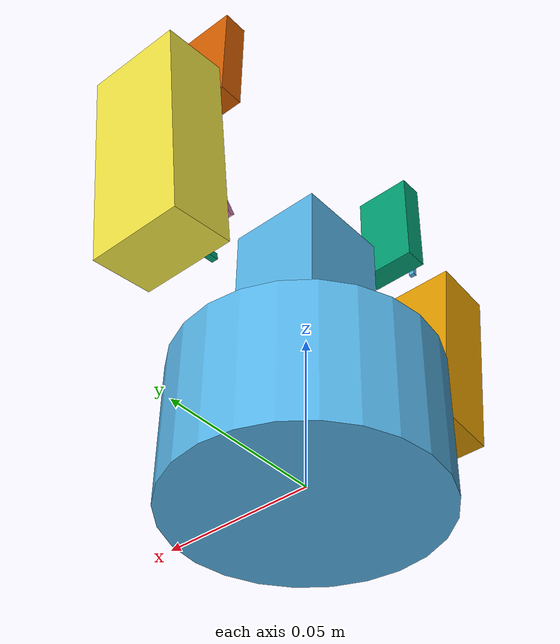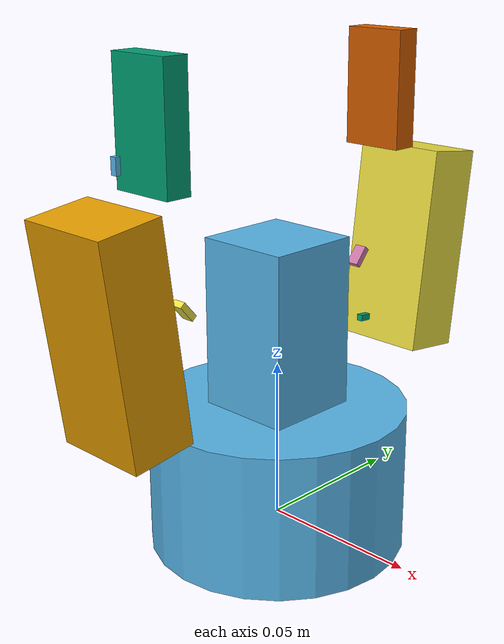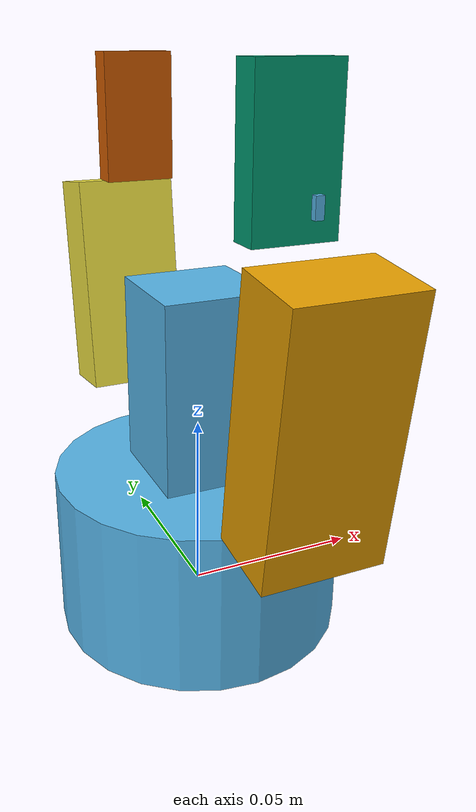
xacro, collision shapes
<?xml version="1.0"?>
    <robot name="robotiq" xmlns:xacro="http://wiki.ros.org/xacro">

        <!-- common stuff -->
        <xacro:include filename="$(find ur3_description)/urdf/common.gazebo.xacro" />

        <xacro:include filename="$(find robotiq_2f_85_gripper_description)/urdf/robotiq_2f_85.urdf.xacro"/>
        <link name="world"/>
        <xacro:robotiq_2f_85 name="gripper" parent="world" precise_collision="false" adaptive_transmission="false">
            <origin xyz="0 0 0" rpy="0 0 0"/>
        </xacro:robotiq_2f_85>
    </robot>

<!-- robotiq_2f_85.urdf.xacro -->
<robot xmlns:xacro="http://ros.org/wiki/xacro">

	<xacro:include filename="$(find robotiq_2f_85_gripper_description)/urdf/inertias.urdf.xacro" />

	<xacro:macro name="robotiq_2f_85" params="parent name precise_collision:=false adaptive_transmission:=false with_pads:=true *origin">

		<!-- base -->
		<joint name="${parent}_${name}_base_joint" type="fixed">
			<xacro:insert_block name="origin"/>
			<parent link="${parent}"/>
			<child link="${name}_base"/>
		</joint>
		<link name="${name}_base">
			<inertial>
				<mass value="0.5"/>
				<origin xyz="0 0 ${0.015*0.5}"  />
				<xacro:cylinder_inertia radius="0.04" length="0.045" mass="0.5"/>
			</inertial>
			<visual>
				<origin xyz="0 0 0" rpy="0 -1.5708 0"/>
				<geometry>
					<mesh filename="package://robotiq_2f_85_gripper_description/meshes/visual/base.dae"/>
				</geometry>
			</visual>
			<xacro:unless value="${precise_collision}">
			<collision>
				<origin xyz="0 0 0.015" rpy="0 0 0"/>
				<geometry>
					<cylinder radius="0.04" length="0.045"/>
				</geometry>
			</collision>
			<collision>
				<origin xyz="0 0 0.06" rpy="0 0 0"/>
				<geometry>
					<box size="0.03 0.03 0.06"/>
				</geometry>
			</collision>
			</xacro:unless>
			<xacro:if value="${precise_collision}">
			<collision>
				<geometry>
					<mesh filename="package://robotiq_2f_85_gripper_description/meshes/collision/base.stl" scale="0.001 0.001 0.001"/>
				</geometry>
			</collision>
			</xacro:if>
		</link>

		<!-- right finger -->

		<joint name="${name}_right_driver_joint" type="revolute">
			<origin xyz="0 0.0306011 0.054904" rpy="0 0 0"/>
			<parent link="${name}_base"/>
			<child link="${name}_right_driver"/>
			<axis xyz="1 0 0"/>
			<limit lower="${0 * 3.141592 / 180}" upper="${50 * 3.141592 / 180}" effort="60" velocity="${110 * 3.141592 / 180}" />
		</joint>
		<link name="${name}_right_driver">
			<inertial>
				<mass value="0.1"/>
				<origin xyz="0 0.02 0" rpy="0 0 0" />
				<xacro:box_inertia x_dim="0.02" y_dim="0.04" z_dim="0.02" mass="0.1"/>
			</inertial>
			<visual>
				<geometry>
					<mesh filename="package://robotiq_2f_85_gripper_description/meshes/visual/driver.dae" scale="0.001 0.001 0.001"/>
				</geometry>
			</visual>
			<xacro:unless value="${precise_collision}">
			<collision>
				<origin xyz="0 0.01 0" rpy="-0.1 0 0"/>
				<geometry>
					<box size="0.002 0.004 0.002"/>
				</geometry>
			</collision>
			</xacro:unless>
			<xacro:if value="${precise_collision}">
			<collision>
				<geometry>
					<mesh filename="package://robotiq_2f_85_gripper_description/meshes/collision/driver.stl" scale="0.001 0.001 0.001"/>
				</geometry>
			</collision>
			</xacro:if>
		</link>

		<xacro:unless value="${adaptive_transmission}">
		<joint name="${name}_right_coupler_joint" type="fixed">
			<origin xyz="0 0.0315 -0.0041" rpy="0 0 0"/>
			<parent link="${name}_right_driver"/>
			<child link="${name}_right_coupler"/>
		</joint>
		</xacro:unless>
		<xacro:if value="${adaptive_transmission}">
			<joint name="${name}_right_coupler_joint" type="revolute">
			<origin xyz="0 0.0315 -0.0041" rpy="0 0 0"/>
			<parent link="${name}_right_driver"/>
			<child link="${name}_right_coupler"/>
			<axis xyz="1 0 0"/>
			<limit lower="${-170 * 3.141592 / 180}" upper="${170 * 3.141592 / 180}" effort="176" velocity="${110 * 3.141592 / 180}" />
		</joint>
		</xacro:if>
		<link name="${name}_right_coupler">
			<inertial>
				<mass value="0.1"/>
				<origin xyz="0 0.0 0.025" rpy="-1.7 0 0"/>
				<xacro:box_inertia x_dim="0.03" y_dim="0.065" z_dim="0.02" mass="0.1"/>
			</inertial>
			<visual>
				<geometry>
					<mesh filename="package://robotiq_2f_85_gripper_description/meshes/visual/coupler.dae" scale="0.001 0.001 0.001"/>
				</geometry>
			</visual>
			<xacro:unless value="${precise_collision}">
			<collision>
				<origin xyz="0 0.0 0.025" rpy="-1.7 0 0"/>
				<geometry>
					<box size="0.03 0.065 0.02"/>
				</geometry>
			</collision>
			</xacro:unless>
			<xacro:if value="${precise_collision}">
				<collision>
					<geometry>
						<mesh filename="package://robotiq_2f_85_gripper_description/meshes/collision/coupler.stl" scale="0.001 0.001 0.001"/>
					</geometry>
				</collision>
			</xacro:if>
		</link>

		<joint name="${name}_right_follower_joint" type="revolute">
			<origin xyz="0 0.0061 0.0471" rpy="0 0 0"/>
			<parent link="${name}_right_coupler"/>
			<child link="${name}_right_follower"/>
			<axis xyz="1 0 0"/>
			<limit lower="${-170 * 3.141592 / 180}" upper="${170 * 3.141592 / 180}" effort="176" velocity="${110 * 3.141592 / 180}" />

			<xacro:unless value="${adaptive_transmission}">
			<mimic joint="${name}_right_driver_joint" multiplier="-1"/>
			</xacro:unless>
		</joint>
		<link name="${name}_right_follower">
			<inertial>
				<mass value="0.1"/>
				<origin xyz="0 -0.018 0.022" />
				<xacro:box_inertia x_dim="0.02" y_dim="0.015" z_dim="0.048" mass="0.1"/>
			</inertial>
			<visual>
				<geometry>
					<mesh filename="package://robotiq_2f_85_gripper_description/meshes/visual/follower.dae" scale="0.001 0.001 0.001"/>
				</geometry>
			</visual>
			<xacro:unless value="${precise_collision}">
			<collision>
				<origin xyz="0 -0.01 0.022" rpy="0 0 0"/>
				<geometry>
					<box size="0.002 0.0015 0.0048"/>
				</geometry>
			</collision>
			</xacro:unless>
			<xacro:if value="${precise_collision}">
			<collision>
				<geometry>
					<mesh filename="package://robotiq_2f_85_gripper_description/meshes/collision/follower.stl" scale="0.001 0.001 0.001"/>
				</geometry>
			</collision>
			</xacro:if>
		</link>

		<xacro:if value="${with_pads}">
			<joint name="${name}_right_pad_joint" type="fixed">
				<parent link="${name}_right_follower"/>
				<child link="${name}_right_pad"/>
			</joint>
			<link name="${name}_right_pad">
				<inertial>
					<mass value="0.1"/>
					<origin xyz="0 -0.022 0.031" />
					<xacro:box_inertia x_dim="0.02" y_dim="0.008" z_dim="0.036" mass="0.1"/>
				</inertial>
				<visual>
					<geometry>
						<mesh filename="package://robotiq_2f_85_gripper_description/meshes/visual/pad.dae" scale="0.001 0.001 0.001"/>
					</geometry>
				</visual>
				<xacro:unless value="${precise_collision}">
				<collision>
					<origin xyz="0 -0.022 0.031" rpy="0 0 0"/>
					<geometry>
						<box size="0.02 0.008 0.036"/>
					</geometry>
				</collision>
				</xacro:unless>
				<xacro:if value="${precise_collision}">
				<collision>
					<geometry>
						<mesh filename="package://robotiq_2f_85_gripper_description/meshes/collision/pad.stl" scale="0.001 0.001 0.001"/>
					</geometry>
				</collision>
				</xacro:if>
			</link>
		</xacro:if>

		<joint name="${name}_right_spring_link_joint" type="revolute">
			<origin xyz="0 0.012 0.0614" rpy="0 0 0"/>
			<parent link="${name}_base"/>
			<child link="${name}_right_spring_link"/>
			<axis xyz="1 0 0"/>
			<limit lower="${-170 * 3.141592 / 180}" upper="${170 * 3.141592 / 180}" effort="176" velocity="${110 * 3.141592 / 180}" />

			<xacro:unless value="${adaptive_transmission}">
			<mimic joint="${name}_right_driver_joint" multiplier="1"/>
			</xacro:unless>
		</joint>
		<link name="${name}_right_spring_link">
			<inertial>
				<mass value="0.1"/>
				<origin xyz="0 0.018 0.018" rpy="-0.7068 0 0"/>
				<xacro:box_inertia x_dim="0.04" y_dim="0.02" z_dim="0.065" mass="0.1"/>
			</inertial>
			<visual>
				<geometry>
					<mesh filename="package://robotiq_2f_85_gripper_description/meshes/visual/spring_link.dae" scale="0.001 0.001 0.001"/>
				</geometry>
			</visual>
			<xacro:unless value="${precise_collision}">
			<collision>
				<origin xyz="0 0.025 0.015" rpy="-0.7068 0 0"/>
				<geometry>
					<box size="0.004 0.002 0.0065"/>
				</geometry>
			</collision>
			</xacro:unless>
			<xacro:if value="${precise_collision}">
			<collision>
				<geometry>
					<mesh filename="package://robotiq_2f_85_gripper_description/meshes/collision/spring_link.stl" scale="0.001 0.001 0.001"/>
				</geometry>
			</collision>
			</xacro:if>
		</link>

		<!-- left finger -->

		<joint name="${name}_left_driver_joint" type="revolute">
			<origin xyz="0 -0.0306011 0.054904" rpy="0 0 3.141592653589793"/>
			<parent link="${name}_base"/>
			<child link="${name}_left_driver"/>
			<axis xyz="1 0 0"/>
			<limit lower="${0 * 3.141592 / 180}" upper="${50 * 3.141592 / 180}" effort="176" velocity="${110 * 3.141592 / 180}" />

			<xacro:unless value="${adaptive_transmission}">
			<mimic joint="${name}_right_driver_joint" multiplier="1"/>
			</xacro:unless>
		</joint>
		<link name="${name}_left_driver">
			<inertial>
				<mass value="0.1"/>
				<origin xyz="0 0.02 0" rpy="0 0 0" />
				<xacro:box_inertia x_dim="0.02" y_dim="0.04" z_dim="0.02" mass="0.1"/>
			</inertial>
			<visual>
				<geometry>
					<mesh filename="package://robotiq_2f_85_gripper_description/meshes/visual/driver.dae" scale="0.001 0.001 0.001"/>
				</geometry>
			</visual>
			<xacro:unless value="${precise_collision}">
			<collision>
				<origin xyz="0 0.01 0" rpy="-0.1 0 0"/>
				<geometry>
					<box size="0.002 0.004 0.002"/>
				</geometry>
			</collision>
			</xacro:unless>
			<xacro:if value="${precise_collision}">
			<collision>
				<geometry>
					<mesh filename="package://robotiq_2f_85_gripper_description/meshes/collision/driver.stl" scale="0.001 0.001 0.001"/>
				</geometry>
			</collision>
			</xacro:if>
		</link>

		<xacro:unless value="${adaptive_transmission}">
		<joint name="${name}_left_coupler_joint" type="fixed">
			<origin xyz="0 0.0315 -0.0041" rpy="0 0 0"/>
			<parent link="${name}_left_driver"/>
			<child link="${name}_left_coupler"/>
		</joint>
		</xacro:unless>
		<xacro:if value="${adaptive_transmission}">
			<joint name="${name}_left_coupler_joint" type="revolute">
			<origin xyz="0 0.0315 -0.0041" rpy="0 0 0"/>
			<parent link="${name}_left_driver"/>
			<child link="${name}_left_coupler"/>
			<axis xyz="1 0 0"/>
			<limit lower="${-170 * 3.141592 / 180}" upper="${170 * 3.141592 / 180}" effort="176" velocity="${110 * 3.141592 / 180}" />
		</joint>
		</xacro:if>
		<link name="${name}_left_coupler">
			<inertial>
				<mass value="0.1"/>
				<origin xyz="0 0.0 0.025" rpy="-1.7 0 0"/>
				<xacro:box_inertia x_dim="0.03" y_dim="0.065" z_dim="0.02" mass="0.1"/>
			</inertial>
			<visual>
				<geometry>
					<mesh filename="package://robotiq_2f_85_gripper_description/meshes/visual/coupler.dae" scale="0.001 0.001 0.001"/>
				</geometry>
			</visual>
			<xacro:unless value="${precise_collision}">
			<collision>
				<origin xyz="0 0.0 0.025" rpy="-1.7 0 0"/>
				<geometry>
					<box size="0.03 0.065 0.02"/>
				</geometry>
			</collision>
			</xacro:unless>
			<xacro:if value="${precise_collision}">
				<collision>
					<geometry>
						<mesh filename="package://robotiq_2f_85_gripper_description/meshes/collision/coupler.stl" scale="0.001 0.001 0.001"/>
					</geometry>
				</collision>
			</xacro:if>
		</link>

		<joint name="${name}_left_follower_joint" type="revolute">
			<origin xyz="0 0.0061 0.0471" rpy="0 0 0"/>
			<parent link="${name}_left_coupler"/>
			<child link="${name}_left_follower"/>
			<axis xyz="1 0 0"/>
			<limit lower="${-170 * 3.141592 / 180}" upper="${170 * 3.141592 / 180}" effort="176" velocity="${110 * 3.141592 / 180}" />

			<xacro:unless value="${adaptive_transmission}">
			<mimic joint="${name}_right_driver_joint" multiplier="-1"/>
			</xacro:unless>
		</joint>
		<link name="${name}_left_follower">
			<inertial>
				<mass value="0.1"/>
				<origin xyz="0 -0.018 0.022" />
				<xacro:box_inertia x_dim="0.02" y_dim="0.015" z_dim="0.048" mass="0.1"/>
			</inertial>
			<visual>
				<geometry>
					<mesh filename="package://robotiq_2f_85_gripper_description/meshes/visual/follower.dae" scale="0.001 0.001 0.001"/>
				</geometry>
			</visual>
			<xacro:unless value="${precise_collision}">
			<collision>
				<origin xyz="0 -0.01 0.022" rpy="0 0 0"/>
				<geometry>
					<box size="0.002 0.0015 0.0048"/>
				</geometry>
			</collision>
			</xacro:unless>
			<xacro:if value="${precise_collision}">
			<collision>
				<geometry>
					<mesh filename="package://robotiq_2f_85_gripper_description/meshes/collision/follower.stl" scale="0.001 0.001 0.001"/>
				</geometry>
			</collision>
			</xacro:if>
		</link>

		<xacro:if value="${with_pads}">
			<joint name="${name}_left_pad_joint" type="fixed">
				<parent link="${name}_left_follower"/>
				<child link="${name}_left_pad"/>
			</joint>
			<link name="${name}_left_pad">
				<inertial>
					<mass value="0.1"/>
					<origin xyz="0 -0.022 0.031" />
					<xacro:box_inertia x_dim="0.02" y_dim="0.008" z_dim="0.036" mass="0.1"/>
				</inertial>
				<visual>
					<geometry>
						<mesh filename="package://robotiq_2f_85_gripper_description/meshes/visual/pad.dae" scale="0.001 0.001 0.001"/>
					</geometry>
				</visual>
				<xacro:unless value="${precise_collision}">
				<collision>
					<origin xyz="0 -0.022 0.031" rpy="0 0 0"/>
					<geometry>
						<box size="0.02 0.008 0.036"/>
					</geometry>
				</collision>
				</xacro:unless>
				<xacro:if value="${precise_collision}">
				<collision>
					<geometry>
						<mesh filename="package://robotiq_2f_85_gripper_description/meshes/collision/pad.stl" scale="0.001 0.001 0.001"/>
					</geometry>
				</collision>
				</xacro:if>
			</link>
		</xacro:if>

		<joint name="${name}_left_spring_link_joint" type="revolute">
			<origin xyz="0 -0.012 0.0614" rpy="0 0 3.141592653589793"/>
			<parent link="${name}_base"/>
			<child link="${name}_left_spring_link"/>
			<axis xyz="1 0 0"/>
			<limit lower="${-170 * 3.141592 / 180}" upper="${170 * 3.141592 / 180}" effort="176" velocity="${110 * 3.141592 / 180}" />

			<xacro:unless value="${adaptive_transmission}">
			<mimic joint="${name}_right_driver_joint" multiplier="1"/>
			</xacro:unless>
		</joint>
		<link name="${name}_left_spring_link">
			<inertial>
				<mass value="0.1"/>
				<origin xyz="0 0.018 0.018" rpy="-0.7068 0 0"/>
				<xacro:box_inertia x_dim="0.04" y_dim="0.02" z_dim="0.065" mass="0.1"/>
			</inertial>
			<visual>
				<geometry>
					<mesh filename="package://robotiq_2f_85_gripper_description/meshes/visual/spring_link.dae" scale="0.001 0.001 0.001"/>
				</geometry>
			</visual>
			<xacro:unless value="${precise_collision}">
			<collision>
				<origin xyz="0 0.025 0.015" rpy="-0.7068 0 0"/>
				<geometry>
					<box size="0.004 0.002 0.0065"/>
				</geometry>
			</collision>
			</xacro:unless>
			<xacro:if value="${precise_collision}">
			<collision>
				<geometry>
					<mesh filename="package://robotiq_2f_85_gripper_description/meshes/collision/spring_link.stl" scale="0.001 0.001 0.001"/>
				</geometry>
			</collision>
			</xacro:if>
		</link>

		<xacro:unless value="${adaptive_transmission}">
			<transmission name="${name}_right_driver_trans">
				<type>transmission_interface/SimpleTransmission</type>
				<joint name="${name}_right_driver_joint">
					<hardwareInterface>hardware_interface/PositionJointInterface</hardwareInterface>
				</joint>
				<actuator name="${name}_right_driver_motor">
					<mechanicalReduction>1</mechanicalReduction>
				</actuator>
			</transmission>

			<gazebo>
				<plugin name="${name}_right_follower_joint_plugin" filename="libroboticsgroup_gazebo_mimic_joint_plugin.so">
					<joint>${name}_right_driver_joint</joint>
					<mimicJoint>${name}_right_follower_joint</mimicJoint>
					<multiplier>-1</multiplier>
				</plugin>
				<plugin name="${name}_right_spring_link_joint_plugin" filename="libroboticsgroup_gazebo_mimic_joint_plugin.so">
					<joint>${name}_right_driver_joint</joint>
					<mimicJoint>${name}_right_spring_link_joint</mimicJoint>
					<multiplier>1</multiplier>
				</plugin>
				<plugin name="${name}_left_follower_joint_plugin" filename="libroboticsgroup_gazebo_mimic_joint_plugin.so">
					<joint>${name}_right_driver_joint</joint>
					<mimicJoint>${name}_left_follower_joint</mimicJoint>
					<multiplier>-1</multiplier>
				</plugin>
				<plugin name="${name}_left_spring_link_joint_plugin" filename="libroboticsgroup_gazebo_mimic_joint_plugin.so">
					<joint>${name}_right_driver_joint</joint>
					<mimicJoint>${name}_left_spring_link_joint</mimicJoint>
					<multiplier>1</multiplier>
				</plugin>
				<plugin name="${name}_left_driver_joint_plugin" filename="libroboticsgroup_gazebo_mimic_joint_plugin.so">
					<joint>${name}_right_driver_joint</joint>
					<mimicJoint>${name}_left_driver_joint</mimicJoint>
					<multiplier>1</multiplier>
				</plugin>
		</gazebo>
	</xacro:unless>
	</xacro:macro>
</robot>
